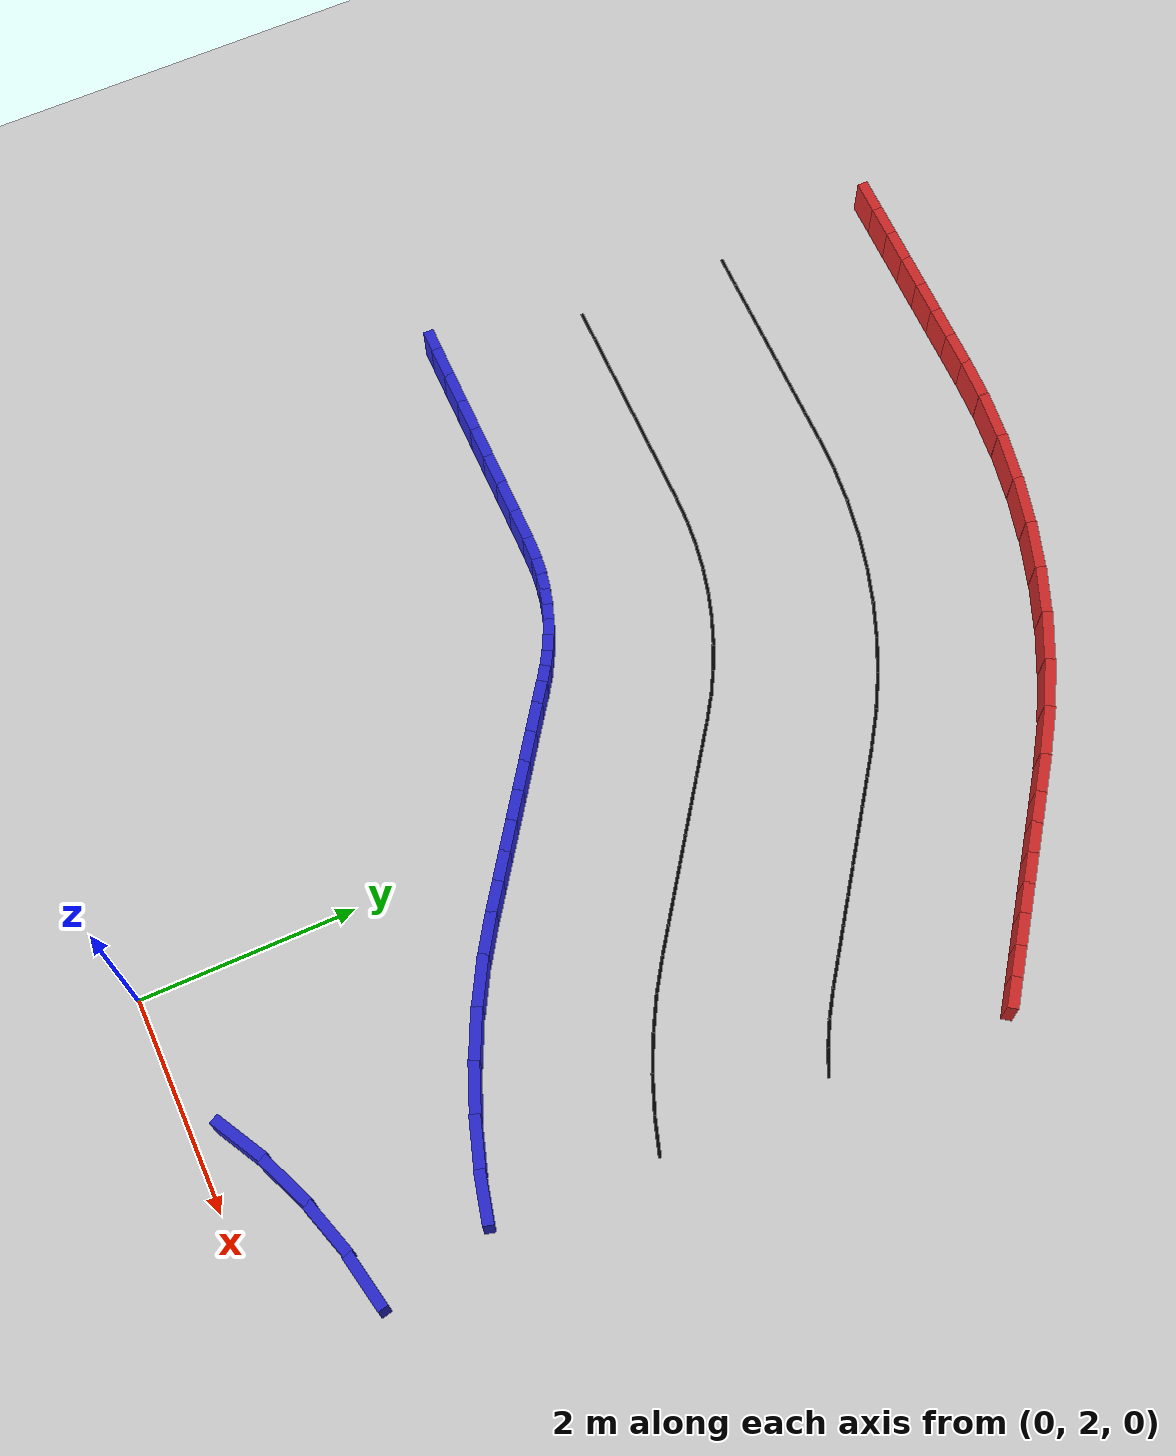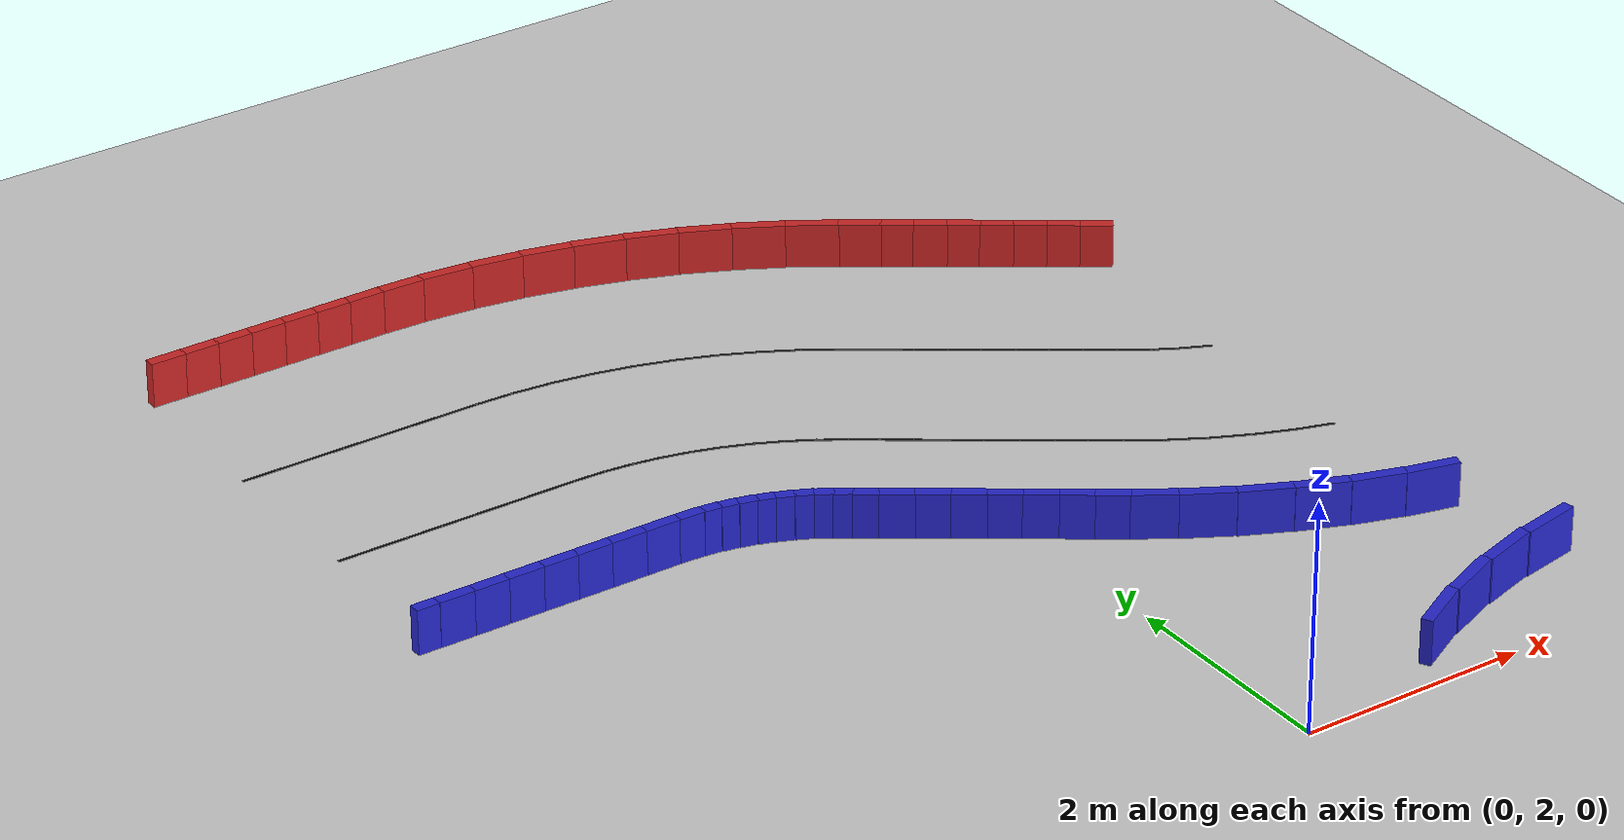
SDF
<sdf version="1.6">
 <world name="3lane_track">
  <include><uri>model://ground_plane</uri></include>
  <include><uri>model://sun</uri></include>
  <model name="iw_84">
   <static>true</static>
   <pose>1.5563 2.3871 0.200 0 0 0.5067</pose>
   <link name="l">
    <collision name="c"><geometry><box><size>0.5416 0.1 0.4</size></box></geometry></collision>
    <visual name="v">
     <geometry><box><size>0.5416 0.1 0.4</size></box></geometry>
     <material><ambient>0.15 0.15 0.8 1</ambient><diffuse>0.15 0.15 0.8 1</diffuse></material>
    </visual>
   </link>
  </model>
  <model name="iw_85">
   <static>true</static>
   <pose>2.0380 2.6106 0.200 0 0 0.4054</pose>
   <link name="l">
    <collision name="c"><geometry><box><size>0.5416 0.1 0.4</size></box></geometry></collision>
    <visual name="v">
     <geometry><box><size>0.5416 0.1 0.4</size></box></geometry>
     <material><ambient>0.15 0.15 0.8 1</ambient><diffuse>0.15 0.15 0.8 1</diffuse></material>
    </visual>
   </link>
  </model>
  <model name="iw_86">
   <static>true</static>
   <pose>2.5398 2.7841 0.200 0 0 0.3040</pose>
   <link name="l">
    <collision name="c"><geometry><box><size>0.5416 0.1 0.4</size></box></geometry></collision>
    <visual name="v">
     <geometry><box><size>0.5416 0.1 0.4</size></box></geometry>
     <material><ambient>0.15 0.15 0.8 1</ambient><diffuse>0.15 0.15 0.8 1</diffuse></material>
    </visual>
   </link>
  </model>
  <model name="iw_87">
   <static>true</static>
   <pose>3.0566 2.9060 0.200 0 0 0.2027</pose>
   <link name="l">
    <collision name="c"><geometry><box><size>0.5416 0.1 0.4</size></box></geometry></collision>
    <visual name="v">
     <geometry><box><size>0.5416 0.1 0.4</size></box></geometry>
     <material><ambient>0.15 0.15 0.8 1</ambient><diffuse>0.15 0.15 0.8 1</diffuse></material>
    </visual>
   </link>
  </model>
  <model name="iw_249">
   <static>true</static>
   <pose>2.8333 4.0444 0.200 0 0 2.9040</pose>
   <link name="l">
    <collision name="c"><geometry><box><size>0.4680 0.1 0.4</size></box></geometry></collision>
    <visual name="v">
     <geometry><box><size>0.4680 0.1 0.4</size></box></geometry>
     <material><ambient>0.15 0.15 0.8 1</ambient><diffuse>0.15 0.15 0.8 1</diffuse></material>
    </visual>
   </link>
  </model>
  <model name="iw_250">
   <static>true</static>
   <pose>2.3937 4.1721 0.200 0 0 2.8362</pose>
   <link name="l">
    <collision name="c"><geometry><box><size>0.4680 0.1 0.4</size></box></geometry></collision>
    <visual name="v">
     <geometry><box><size>0.4680 0.1 0.4</size></box></geometry>
     <material><ambient>0.15 0.15 0.8 1</ambient><diffuse>0.15 0.15 0.8 1</diffuse></material>
    </visual>
   </link>
  </model>
  <model name="iw_251">
   <static>true</static>
   <pose>1.9639 4.3294 0.200 0 0 2.7683</pose>
   <link name="l">
    <collision name="c"><geometry><box><size>0.4680 0.1 0.4</size></box></geometry></collision>
    <visual name="v">
     <geometry><box><size>0.4680 0.1 0.4</size></box></geometry>
     <material><ambient>0.15 0.15 0.8 1</ambient><diffuse>0.15 0.15 0.8 1</diffuse></material>
    </visual>
   </link>
  </model>
  <model name="iw_252">
   <static>true</static>
   <pose>1.5456 4.5154 0.200 0 0 2.7004</pose>
   <link name="l">
    <collision name="c"><geometry><box><size>0.4680 0.1 0.4</size></box></geometry></collision>
    <visual name="v">
     <geometry><box><size>0.4680 0.1 0.4</size></box></geometry>
     <material><ambient>0.15 0.15 0.8 1</ambient><diffuse>0.15 0.15 0.8 1</diffuse></material>
    </visual>
   </link>
  </model>
  <model name="iw_253">
   <static>true</static>
   <pose>1.1410 4.7294 0.200 0 0 2.6325</pose>
   <link name="l">
    <collision name="c"><geometry><box><size>0.4680 0.1 0.4</size></box></geometry></collision>
    <visual name="v">
     <geometry><box><size>0.4680 0.1 0.4</size></box></geometry>
     <material><ambient>0.15 0.15 0.8 1</ambient><diffuse>0.15 0.15 0.8 1</diffuse></material>
    </visual>
   </link>
  </model>
  <model name="iw_254">
   <static>true</static>
   <pose>0.7827 4.9479 0.200 0 0 2.5647</pose>
   <link name="l">
    <collision name="c"><geometry><box><size>0.3917 0.1 0.4</size></box></geometry></collision>
    <visual name="v">
     <geometry><box><size>0.3917 0.1 0.4</size></box></geometry>
     <material><ambient>0.15 0.15 0.8 1</ambient><diffuse>0.15 0.15 0.8 1</diffuse></material>
    </visual>
   </link>
  </model>
  <model name="iw_255">
   <static>true</static>
   <pose>0.5079 5.1332 0.200 0 0 2.5307</pose>
   <link name="l">
    <collision name="c"><geometry><box><size>0.2912 0.1 0.4</size></box></geometry></collision>
    <visual name="v">
     <geometry><box><size>0.2912 0.1 0.4</size></box></geometry>
     <material><ambient>0.15 0.15 0.8 1</ambient><diffuse>0.15 0.15 0.8 1</diffuse></material>
    </visual>
   </link>
  </model>
  <model name="iw_256">
   <static>true</static>
   <pose>0.2775 5.2945 0.200 0 0 2.5307</pose>
   <link name="l">
    <collision name="c"><geometry><box><size>0.2912 0.1 0.4</size></box></geometry></collision>
    <visual name="v">
     <geometry><box><size>0.2912 0.1 0.4</size></box></geometry>
     <material><ambient>0.15 0.15 0.8 1</ambient><diffuse>0.15 0.15 0.8 1</diffuse></material>
    </visual>
   </link>
  </model>
  <model name="iw_257">
   <static>true</static>
   <pose>0.0471 5.4558 0.200 0 0 2.5307</pose>
   <link name="l">
    <collision name="c"><geometry><box><size>0.2912 0.1 0.4</size></box></geometry></collision>
    <visual name="v">
     <geometry><box><size>0.2912 0.1 0.4</size></box></geometry>
     <material><ambient>0.15 0.15 0.8 1</ambient><diffuse>0.15 0.15 0.8 1</diffuse></material>
    </visual>
   </link>
  </model>
  <model name="iw_258">
   <static>true</static>
   <pose>-0.1833 5.6172 0.200 0 0 2.5307</pose>
   <link name="l">
    <collision name="c"><geometry><box><size>0.2912 0.1 0.4</size></box></geometry></collision>
    <visual name="v">
     <geometry><box><size>0.2912 0.1 0.4</size></box></geometry>
     <material><ambient>0.15 0.15 0.8 1</ambient><diffuse>0.15 0.15 0.8 1</diffuse></material>
    </visual>
   </link>
  </model>
  <model name="iw_259">
   <static>true</static>
   <pose>-0.4137 5.7785 0.200 0 0 2.5307</pose>
   <link name="l">
    <collision name="c"><geometry><box><size>0.2912 0.1 0.4</size></box></geometry></collision>
    <visual name="v">
     <geometry><box><size>0.2912 0.1 0.4</size></box></geometry>
     <material><ambient>0.15 0.15 0.8 1</ambient><diffuse>0.15 0.15 0.8 1</diffuse></material>
    </visual>
   </link>
  </model>
  <model name="iw_260">
   <static>true</static>
   <pose>-0.6440 5.9398 0.200 0 0 2.5307</pose>
   <link name="l">
    <collision name="c"><geometry><box><size>0.2913 0.1 0.4</size></box></geometry></collision>
    <visual name="v">
     <geometry><box><size>0.2913 0.1 0.4</size></box></geometry>
     <material><ambient>0.15 0.15 0.8 1</ambient><diffuse>0.15 0.15 0.8 1</diffuse></material>
    </visual>
   </link>
  </model>
  <model name="iw_261">
   <static>true</static>
   <pose>-0.8744 6.1011 0.200 0 0 2.5307</pose>
   <link name="l">
    <collision name="c"><geometry><box><size>0.2913 0.1 0.4</size></box></geometry></collision>
    <visual name="v">
     <geometry><box><size>0.2913 0.1 0.4</size></box></geometry>
     <material><ambient>0.15 0.15 0.8 1</ambient><diffuse>0.15 0.15 0.8 1</diffuse></material>
    </visual>
   </link>
  </model>
  <model name="iw_262">
   <static>true</static>
   <pose>-1.0732 6.2411 0.200 0 0 2.5307</pose>
   <link name="l">
    <collision name="c"><geometry><box><size>0.2149 0.1 0.4</size></box></geometry></collision>
    <visual name="v">
     <geometry><box><size>0.2149 0.1 0.4</size></box></geometry>
     <material><ambient>0.15 0.15 0.8 1</ambient><diffuse>0.15 0.15 0.8 1</diffuse></material>
    </visual>
   </link>
  </model>
  <model name="iw_263">
   <static>true</static>
   <pose>-1.2193 6.3442 0.200 0 0 2.5647</pose>
   <link name="l">
    <collision name="c"><geometry><box><size>0.1629 0.1 0.4</size></box></geometry></collision>
    <visual name="v">
     <geometry><box><size>0.1629 0.1 0.4</size></box></geometry>
     <material><ambient>0.15 0.15 0.8 1</ambient><diffuse>0.15 0.15 0.8 1</diffuse></material>
    </visual>
   </link>
  </model>
  <model name="iw_264">
   <static>true</static>
   <pose>-1.3474 6.4275 0.200 0 0 2.6325</pose>
   <link name="l">
    <collision name="c"><geometry><box><size>0.1629 0.1 0.4</size></box></geometry></collision>
    <visual name="v">
     <geometry><box><size>0.1629 0.1 0.4</size></box></geometry>
     <material><ambient>0.15 0.15 0.8 1</ambient><diffuse>0.15 0.15 0.8 1</diffuse></material>
    </visual>
   </link>
  </model>
  <model name="iw_265">
   <static>true</static>
   <pose>-1.4808 6.5020 0.200 0 0 2.7004</pose>
   <link name="l">
    <collision name="c"><geometry><box><size>0.1629 0.1 0.4</size></box></geometry></collision>
    <visual name="v">
     <geometry><box><size>0.1629 0.1 0.4</size></box></geometry>
     <material><ambient>0.15 0.15 0.8 1</ambient><diffuse>0.15 0.15 0.8 1</diffuse></material>
    </visual>
   </link>
  </model>
  <model name="iw_266">
   <static>true</static>
   <pose>-1.6189 6.5672 0.200 0 0 2.7683</pose>
   <link name="l">
    <collision name="c"><geometry><box><size>0.1629 0.1 0.4</size></box></geometry></collision>
    <visual name="v">
     <geometry><box><size>0.1629 0.1 0.4</size></box></geometry>
     <material><ambient>0.15 0.15 0.8 1</ambient><diffuse>0.15 0.15 0.8 1</diffuse></material>
    </visual>
   </link>
  </model>
  <model name="iw_267">
   <static>true</static>
   <pose>-1.7612 6.6229 0.200 0 0 2.8362</pose>
   <link name="l">
    <collision name="c"><geometry><box><size>0.1629 0.1 0.4</size></box></geometry></collision>
    <visual name="v">
     <geometry><box><size>0.1629 0.1 0.4</size></box></geometry>
     <material><ambient>0.15 0.15 0.8 1</ambient><diffuse>0.15 0.15 0.8 1</diffuse></material>
    </visual>
   </link>
  </model>
  <model name="iw_268">
   <static>true</static>
   <pose>-1.9069 6.6689 0.200 0 0 2.9040</pose>
   <link name="l">
    <collision name="c"><geometry><box><size>0.1629 0.1 0.4</size></box></geometry></collision>
    <visual name="v">
     <geometry><box><size>0.1629 0.1 0.4</size></box></geometry>
     <material><ambient>0.15 0.15 0.8 1</ambient><diffuse>0.15 0.15 0.8 1</diffuse></material>
    </visual>
   </link>
  </model>
  <model name="iw_269">
   <static>true</static>
   <pose>-2.0554 6.7048 0.200 0 0 2.9719</pose>
   <link name="l">
    <collision name="c"><geometry><box><size>0.1629 0.1 0.4</size></box></geometry></collision>
    <visual name="v">
     <geometry><box><size>0.1629 0.1 0.4</size></box></geometry>
     <material><ambient>0.15 0.15 0.8 1</ambient><diffuse>0.15 0.15 0.8 1</diffuse></material>
    </visual>
   </link>
  </model>
  <model name="iw_270">
   <static>true</static>
   <pose>-2.2060 6.7306 0.200 0 0 3.0398</pose>
   <link name="l">
    <collision name="c"><geometry><box><size>0.1629 0.1 0.4</size></box></geometry></collision>
    <visual name="v">
     <geometry><box><size>0.1629 0.1 0.4</size></box></geometry>
     <material><ambient>0.15 0.15 0.8 1</ambient><diffuse>0.15 0.15 0.8 1</diffuse></material>
    </visual>
   </link>
  </model>
  <model name="iw_271">
   <static>true</static>
   <pose>-2.3961 6.7455 0.200 0 0 3.1077</pose>
   <link name="l">
    <collision name="c"><geometry><box><size>0.2390 0.1 0.4</size></box></geometry></collision>
    <visual name="v">
     <geometry><box><size>0.2390 0.1 0.4</size></box></geometry>
     <material><ambient>0.15 0.15 0.8 1</ambient><diffuse>0.15 0.15 0.8 1</diffuse></material>
    </visual>
   </link>
  </model>
  <model name="iw_272">
   <static>true</static>
   <pose>-2.6662 6.7500 0.200 0 0 3.1416</pose>
   <link name="l">
    <collision name="c"><geometry><box><size>0.3212 0.1 0.4</size></box></geometry></collision>
    <visual name="v">
     <geometry><box><size>0.3212 0.1 0.4</size></box></geometry>
     <material><ambient>0.15 0.15 0.8 1</ambient><diffuse>0.15 0.15 0.8 1</diffuse></material>
    </visual>
   </link>
  </model>
  <model name="iw_273">
   <static>true</static>
   <pose>-2.9773 6.7500 0.200 0 0 3.1416</pose>
   <link name="l">
    <collision name="c"><geometry><box><size>0.3212 0.1 0.4</size></box></geometry></collision>
    <visual name="v">
     <geometry><box><size>0.3212 0.1 0.4</size></box></geometry>
     <material><ambient>0.15 0.15 0.8 1</ambient><diffuse>0.15 0.15 0.8 1</diffuse></material>
    </visual>
   </link>
  </model>
  <model name="iw_274">
   <static>true</static>
   <pose>-3.2885 6.7500 0.200 0 0 3.1416</pose>
   <link name="l">
    <collision name="c"><geometry><box><size>0.3212 0.1 0.4</size></box></geometry></collision>
    <visual name="v">
     <geometry><box><size>0.3212 0.1 0.4</size></box></geometry>
     <material><ambient>0.15 0.15 0.8 1</ambient><diffuse>0.15 0.15 0.8 1</diffuse></material>
    </visual>
   </link>
  </model>
  <model name="iw_275">
   <static>true</static>
   <pose>-3.5997 6.7500 0.200 0 0 3.1416</pose>
   <link name="l">
    <collision name="c"><geometry><box><size>0.3212 0.1 0.4</size></box></geometry></collision>
    <visual name="v">
     <geometry><box><size>0.3212 0.1 0.4</size></box></geometry>
     <material><ambient>0.15 0.15 0.8 1</ambient><diffuse>0.15 0.15 0.8 1</diffuse></material>
    </visual>
   </link>
  </model>
  <model name="iw_276">
   <static>true</static>
   <pose>-3.9109 6.7500 0.200 0 0 3.1416</pose>
   <link name="l">
    <collision name="c"><geometry><box><size>0.3212 0.1 0.4</size></box></geometry></collision>
    <visual name="v">
     <geometry><box><size>0.3212 0.1 0.4</size></box></geometry>
     <material><ambient>0.15 0.15 0.8 1</ambient><diffuse>0.15 0.15 0.8 1</diffuse></material>
    </visual>
   </link>
  </model>
  <model name="iw_277">
   <static>true</static>
   <pose>-4.2221 6.7500 0.200 0 0 3.1416</pose>
   <link name="l">
    <collision name="c"><geometry><box><size>0.3212 0.1 0.4</size></box></geometry></collision>
    <visual name="v">
     <geometry><box><size>0.3212 0.1 0.4</size></box></geometry>
     <material><ambient>0.15 0.15 0.8 1</ambient><diffuse>0.15 0.15 0.8 1</diffuse></material>
    </visual>
   </link>
  </model>
  <model name="iw_278">
   <static>true</static>
   <pose>-4.5332 6.7500 0.200 0 0 3.1416</pose>
   <link name="l">
    <collision name="c"><geometry><box><size>0.3212 0.1 0.4</size></box></geometry></collision>
    <visual name="v">
     <geometry><box><size>0.3212 0.1 0.4</size></box></geometry>
     <material><ambient>0.15 0.15 0.8 1</ambient><diffuse>0.15 0.15 0.8 1</diffuse></material>
    </visual>
   </link>
  </model>
  <model name="iw_279">
   <static>true</static>
   <pose>-4.7892 6.7514 0.200 0 0 3.1416</pose>
   <link name="l">
    <collision name="c"><geometry><box><size>0.2108 0.1 0.4</size></box></geometry></collision>
    <visual name="v">
     <geometry><box><size>0.2108 0.1 0.4</size></box></geometry>
     <material><ambient>0.15 0.15 0.8 1</ambient><diffuse>0.15 0.15 0.8 1</diffuse></material>
    </visual>
   </link>
  </model>
  <model name="ow_255">
   <static>true</static>
   <pose>3.0890 8.8194 0.200 0 0 2.5307</pose>
   <link name="l">
    <collision name="c"><geometry><box><size>0.2913 0.1 0.4</size></box></geometry></collision>
    <visual name="v">
     <geometry><box><size>0.2913 0.1 0.4</size></box></geometry>
     <material><ambient>0.8 0.15 0.15 1</ambient><diffuse>0.8 0.15 0.15 1</diffuse></material>
    </visual>
   </link>
  </model>
  <model name="ow_256">
   <static>true</static>
   <pose>2.8586 8.9807 0.200 0 0 2.5307</pose>
   <link name="l">
    <collision name="c"><geometry><box><size>0.2912 0.1 0.4</size></box></geometry></collision>
    <visual name="v">
     <geometry><box><size>0.2912 0.1 0.4</size></box></geometry>
     <material><ambient>0.8 0.15 0.15 1</ambient><diffuse>0.8 0.15 0.15 1</diffuse></material>
    </visual>
   </link>
  </model>
  <model name="ow_257">
   <static>true</static>
   <pose>2.6282 9.1420 0.200 0 0 2.5307</pose>
   <link name="l">
    <collision name="c"><geometry><box><size>0.2913 0.1 0.4</size></box></geometry></collision>
    <visual name="v">
     <geometry><box><size>0.2913 0.1 0.4</size></box></geometry>
     <material><ambient>0.8 0.15 0.15 1</ambient><diffuse>0.8 0.15 0.15 1</diffuse></material>
    </visual>
   </link>
  </model>
  <model name="ow_258">
   <static>true</static>
   <pose>2.3978 9.3033 0.200 0 0 2.5307</pose>
   <link name="l">
    <collision name="c"><geometry><box><size>0.2912 0.1 0.4</size></box></geometry></collision>
    <visual name="v">
     <geometry><box><size>0.2912 0.1 0.4</size></box></geometry>
     <material><ambient>0.8 0.15 0.15 1</ambient><diffuse>0.8 0.15 0.15 1</diffuse></material>
    </visual>
   </link>
  </model>
  <model name="ow_259">
   <static>true</static>
   <pose>2.1674 9.4647 0.200 0 0 2.5307</pose>
   <link name="l">
    <collision name="c"><geometry><box><size>0.2913 0.1 0.4</size></box></geometry></collision>
    <visual name="v">
     <geometry><box><size>0.2913 0.1 0.4</size></box></geometry>
     <material><ambient>0.8 0.15 0.15 1</ambient><diffuse>0.8 0.15 0.15 1</diffuse></material>
    </visual>
   </link>
  </model>
  <model name="ow_260">
   <static>true</static>
   <pose>1.9370 9.6260 0.200 0 0 2.5307</pose>
   <link name="l">
    <collision name="c"><geometry><box><size>0.2912 0.1 0.4</size></box></geometry></collision>
    <visual name="v">
     <geometry><box><size>0.2912 0.1 0.4</size></box></geometry>
     <material><ambient>0.8 0.15 0.15 1</ambient><diffuse>0.8 0.15 0.15 1</diffuse></material>
    </visual>
   </link>
  </model>
  <model name="ow_261">
   <static>true</static>
   <pose>1.7067 9.7873 0.200 0 0 2.5307</pose>
   <link name="l">
    <collision name="c"><geometry><box><size>0.2913 0.1 0.4</size></box></geometry></collision>
    <visual name="v">
     <geometry><box><size>0.2913 0.1 0.4</size></box></geometry>
     <material><ambient>0.8 0.15 0.15 1</ambient><diffuse>0.8 0.15 0.15 1</diffuse></material>
    </visual>
   </link>
  </model>
  <model name="ow_262">
   <static>true</static>
   <pose>1.4446 9.9700 0.200 0 0 2.5307</pose>
   <link name="l">
    <collision name="c"><geometry><box><size>0.3676 0.1 0.4</size></box></geometry></collision>
    <visual name="v">
     <geometry><box><size>0.3676 0.1 0.4</size></box></geometry>
     <material><ambient>0.8 0.15 0.15 1</ambient><diffuse>0.8 0.15 0.15 1</diffuse></material>
    </visual>
   </link>
  </model>
  <model name="ow_263">
   <static>true</static>
   <pose>1.1045 10.1947 0.200 0 0 2.5647</pose>
   <link name="l">
    <collision name="c"><geometry><box><size>0.4680 0.1 0.4</size></box></geometry></collision>
    <visual name="v">
     <geometry><box><size>0.4680 0.1 0.4</size></box></geometry>
     <material><ambient>0.8 0.15 0.15 1</ambient><diffuse>0.8 0.15 0.15 1</diffuse></material>
    </visual>
   </link>
  </model>
  <model name="ow_264">
   <static>true</static>
   <pose>0.7099 10.4268 0.200 0 0 2.6325</pose>
   <link name="l">
    <collision name="c"><geometry><box><size>0.4680 0.1 0.4</size></box></geometry></collision>
    <visual name="v">
     <geometry><box><size>0.4680 0.1 0.4</size></box></geometry>
     <material><ambient>0.8 0.15 0.15 1</ambient><diffuse>0.8 0.15 0.15 1</diffuse></material>
    </visual>
   </link>
  </model>
  <model name="ow_265">
   <static>true</static>
   <pose>0.3005 10.6316 0.200 0 0 2.7004</pose>
   <link name="l">
    <collision name="c"><geometry><box><size>0.4680 0.1 0.4</size></box></geometry></collision>
    <visual name="v">
     <geometry><box><size>0.4680 0.1 0.4</size></box></geometry>
     <material><ambient>0.8 0.15 0.15 1</ambient><diffuse>0.8 0.15 0.15 1</diffuse></material>
    </visual>
   </link>
  </model>
  <model name="ow_266">
   <static>true</static>
   <pose>-0.1218 10.8081 0.200 0 0 2.7683</pose>
   <link name="l">
    <collision name="c"><geometry><box><size>0.4680 0.1 0.4</size></box></geometry></collision>
    <visual name="v">
     <geometry><box><size>0.4680 0.1 0.4</size></box></geometry>
     <material><ambient>0.8 0.15 0.15 1</ambient><diffuse>0.8 0.15 0.15 1</diffuse></material>
    </visual>
   </link>
  </model>
  <model name="ow_267">
   <static>true</static>
   <pose>-0.5551 10.9556 0.200 0 0 2.8362</pose>
   <link name="l">
    <collision name="c"><geometry><box><size>0.4680 0.1 0.4</size></box></geometry></collision>
    <visual name="v">
     <geometry><box><size>0.4680 0.1 0.4</size></box></geometry>
     <material><ambient>0.8 0.15 0.15 1</ambient><diffuse>0.8 0.15 0.15 1</diffuse></material>
    </visual>
   </link>
  </model>
  <model name="ow_268">
   <static>true</static>
   <pose>-0.9975 11.0733 0.200 0 0 2.9040</pose>
   <link name="l">
    <collision name="c"><geometry><box><size>0.4680 0.1 0.4</size></box></geometry></collision>
    <visual name="v">
     <geometry><box><size>0.4680 0.1 0.4</size></box></geometry>
     <material><ambient>0.8 0.15 0.15 1</ambient><diffuse>0.8 0.15 0.15 1</diffuse></material>
    </visual>
   </link>
  </model>
  <model name="ow_269">
   <static>true</static>
   <pose>-1.4468 11.1608 0.200 0 0 2.9719</pose>
   <link name="l">
    <collision name="c"><geometry><box><size>0.4680 0.1 0.4</size></box></geometry></collision>
    <visual name="v">
     <geometry><box><size>0.4680 0.1 0.4</size></box></geometry>
     <material><ambient>0.8 0.15 0.15 1</ambient><diffuse>0.8 0.15 0.15 1</diffuse></material>
    </visual>
   </link>
  </model>
  <model name="ow_270">
   <static>true</static>
   <pose>-1.9010 11.2176 0.200 0 0 3.0398</pose>
   <link name="l">
    <collision name="c"><geometry><box><size>0.4680 0.1 0.4</size></box></geometry></collision>
    <visual name="v">
     <geometry><box><size>0.4680 0.1 0.4</size></box></geometry>
     <material><ambient>0.8 0.15 0.15 1</ambient><diffuse>0.8 0.15 0.15 1</diffuse></material>
    </visual>
   </link>
  </model>
  <model name="ow_271">
   <static>true</static>
   <pose>-2.3198 11.2442 0.200 0 0 3.1077</pose>
   <link name="l">
    <collision name="c"><geometry><box><size>0.3917 0.1 0.4</size></box></geometry></collision>
    <visual name="v">
     <geometry><box><size>0.3917 0.1 0.4</size></box></geometry>
     <material><ambient>0.8 0.15 0.15 1</ambient><diffuse>0.8 0.15 0.15 1</diffuse></material>
    </visual>
   </link>
  </model>
  <model name="ow_272">
   <static>true</static>
   <pose>-2.6662 11.2500 0.200 0 0 3.1416</pose>
   <link name="l">
    <collision name="c"><geometry><box><size>0.3212 0.1 0.4</size></box></geometry></collision>
    <visual name="v">
     <geometry><box><size>0.3212 0.1 0.4</size></box></geometry>
     <material><ambient>0.8 0.15 0.15 1</ambient><diffuse>0.8 0.15 0.15 1</diffuse></material>
    </visual>
   </link>
  </model>
  <model name="ow_273">
   <static>true</static>
   <pose>-2.9773 11.2500 0.200 0 0 3.1416</pose>
   <link name="l">
    <collision name="c"><geometry><box><size>0.3212 0.1 0.4</size></box></geometry></collision>
    <visual name="v">
     <geometry><box><size>0.3212 0.1 0.4</size></box></geometry>
     <material><ambient>0.8 0.15 0.15 1</ambient><diffuse>0.8 0.15 0.15 1</diffuse></material>
    </visual>
   </link>
  </model>
  <model name="ow_274">
   <static>true</static>
   <pose>-3.2885 11.2500 0.200 0 0 3.1416</pose>
   <link name="l">
    <collision name="c"><geometry><box><size>0.3212 0.1 0.4</size></box></geometry></collision>
    <visual name="v">
     <geometry><box><size>0.3212 0.1 0.4</size></box></geometry>
     <material><ambient>0.8 0.15 0.15 1</ambient><diffuse>0.8 0.15 0.15 1</diffuse></material>
    </visual>
   </link>
  </model>
  <model name="ow_275">
   <static>true</static>
   <pose>-3.5997 11.2500 0.200 0 0 3.1416</pose>
   <link name="l">
    <collision name="c"><geometry><box><size>0.3212 0.1 0.4</size></box></geometry></collision>
    <visual name="v">
     <geometry><box><size>0.3212 0.1 0.4</size></box></geometry>
     <material><ambient>0.8 0.15 0.15 1</ambient><diffuse>0.8 0.15 0.15 1</diffuse></material>
    </visual>
   </link>
  </model>
  <model name="ow_276">
   <static>true</static>
   <pose>-3.9109 11.2500 0.200 0 0 3.1416</pose>
   <link name="l">
    <collision name="c"><geometry><box><size>0.3212 0.1 0.4</size></box></geometry></collision>
    <visual name="v">
     <geometry><box><size>0.3212 0.1 0.4</size></box></geometry>
     <material><ambient>0.8 0.15 0.15 1</ambient><diffuse>0.8 0.15 0.15 1</diffuse></material>
    </visual>
   </link>
  </model>
  <model name="ow_277">
   <static>true</static>
   <pose>-4.2221 11.2500 0.200 0 0 3.1416</pose>
   <link name="l">
    <collision name="c"><geometry><box><size>0.3212 0.1 0.4</size></box></geometry></collision>
    <visual name="v">
     <geometry><box><size>0.3212 0.1 0.4</size></box></geometry>
     <material><ambient>0.8 0.15 0.15 1</ambient><diffuse>0.8 0.15 0.15 1</diffuse></material>
    </visual>
   </link>
  </model>
  <model name="ow_278">
   <static>true</static>
   <pose>-4.5332 11.2500 0.200 0 0 3.1416</pose>
   <link name="l">
    <collision name="c"><geometry><box><size>0.3212 0.1 0.4</size></box></geometry></collision>
    <visual name="v">
     <geometry><box><size>0.3212 0.1 0.4</size></box></geometry>
     <material><ambient>0.8 0.15 0.15 1</ambient><diffuse>0.8 0.15 0.15 1</diffuse></material>
    </visual>
   </link>
  </model>
  <model name="line_500">
   <static>true</static>
   <pose>2.8928 5.5858 0.002 0 0 2.8362</pose>
   <link name="l">
    <visual name="v">
     <geometry><box><size>0.3662 0.03 0.002</size></box></geometry>
     <material><ambient>0 0 0 1</ambient><diffuse>0 0 0 1</diffuse></material>
    </visual>
   </link>
  </model>
  <model name="line_502">
   <static>true</static>
   <pose>2.5576 5.7059 0.002 0 0 2.7683</pose>
   <link name="l">
    <visual name="v">
     <geometry><box><size>0.3662 0.03 0.002</size></box></geometry>
     <material><ambient>0 0 0 1</ambient><diffuse>0 0 0 1</diffuse></material>
    </visual>
   </link>
  </model>
  <model name="line_504">
   <static>true</static>
   <pose>2.2314 5.8485 0.002 0 0 2.7004</pose>
   <link name="l">
    <visual name="v">
     <geometry><box><size>0.3662 0.03 0.002</size></box></geometry>
     <material><ambient>0 0 0 1</ambient><diffuse>0 0 0 1</diffuse></material>
    </visual>
   </link>
  </model>
  <model name="line_505">
   <static>true</static>
   <pose>2.9172 7.1816 0.002 0 0 2.7004</pose>
   <link name="l">
    <visual name="v">
     <geometry><box><size>0.2645 0.03 0.002</size></box></geometry>
     <material><ambient>0 0 0 1</ambient><diffuse>0 0 0 1</diffuse></material>
    </visual>
   </link>
  </model>
  <model name="line_506">
   <static>true</static>
   <pose>1.9156 6.0129 0.002 0 0 2.6325</pose>
   <link name="l">
    <visual name="v">
     <geometry><box><size>0.3662 0.03 0.002</size></box></geometry>
     <material><ambient>0 0 0 1</ambient><diffuse>0 0 0 1</diffuse></material>
    </visual>
   </link>
  </model>
  <model name="line_507">
   <static>true</static>
   <pose>2.6902 7.2964 0.002 0 0 2.6325</pose>
   <link name="l">
    <visual name="v">
     <geometry><box><size>0.2645 0.03 0.002</size></box></geometry>
     <material><ambient>0 0 0 1</ambient><diffuse>0 0 0 1</diffuse></material>
    </visual>
   </link>
  </model>
  <model name="line_508">
   <static>true</static>
   <pose>1.6220 6.1909 0.002 0 0 2.5647</pose>
   <link name="l">
    <visual name="v">
     <geometry><box><size>0.3408 0.03 0.002</size></box></geometry>
     <material><ambient>0 0 0 1</ambient><diffuse>0 0 0 1</diffuse></material>
    </visual>
   </link>
  </model>
  <model name="line_509">
   <static>true</static>
   <pose>2.4612 7.4338 0.002 0 0 2.5647</pose>
   <link name="l">
    <visual name="v">
     <geometry><box><size>0.2899 0.03 0.002</size></box></geometry>
     <material><ambient>0 0 0 1</ambient><diffuse>0 0 0 1</diffuse></material>
    </visual>
   </link>
  </model>
  <model name="line_510">
   <static>true</static>
   <pose>1.3683 6.3619 0.002 0 0 2.5307</pose>
   <link name="l">
    <visual name="v">
     <geometry><box><size>0.2912 0.03 0.002</size></box></geometry>
     <material><ambient>0 0 0 1</ambient><diffuse>0 0 0 1</diffuse></material>
    </visual>
   </link>
  </model>
  <model name="line_511">
   <static>true</static>
   <pose>2.2286 7.5907 0.002 0 0 2.5307</pose>
   <link name="l">
    <visual name="v">
     <geometry><box><size>0.2912 0.03 0.002</size></box></geometry>
     <material><ambient>0 0 0 1</ambient><diffuse>0 0 0 1</diffuse></material>
    </visual>
   </link>
  </model>
  <model name="line_512">
   <static>true</static>
   <pose>1.1379 6.5233 0.002 0 0 2.5307</pose>
   <link name="l">
    <visual name="v">
     <geometry><box><size>0.2912 0.03 0.002</size></box></geometry>
     <material><ambient>0 0 0 1</ambient><diffuse>0 0 0 1</diffuse></material>
    </visual>
   </link>
  </model>
  <model name="line_513">
   <static>true</static>
   <pose>1.9982 7.7520 0.002 0 0 2.5307</pose>
   <link name="l">
    <visual name="v">
     <geometry><box><size>0.2912 0.03 0.002</size></box></geometry>
     <material><ambient>0 0 0 1</ambient><diffuse>0 0 0 1</diffuse></material>
    </visual>
   </link>
  </model>
  <model name="line_514">
   <static>true</static>
   <pose>0.9075 6.6846 0.002 0 0 2.5307</pose>
   <link name="l">
    <visual name="v">
     <geometry><box><size>0.2912 0.03 0.002</size></box></geometry>
     <material><ambient>0 0 0 1</ambient><diffuse>0 0 0 1</diffuse></material>
    </visual>
   </link>
  </model>
  <model name="line_515">
   <static>true</static>
   <pose>1.7678 7.9133 0.002 0 0 2.5307</pose>
   <link name="l">
    <visual name="v">
     <geometry><box><size>0.2912 0.03 0.002</size></box></geometry>
     <material><ambient>0 0 0 1</ambient><diffuse>0 0 0 1</diffuse></material>
    </visual>
   </link>
  </model>
  <model name="line_516">
   <static>true</static>
   <pose>0.6771 6.8459 0.002 0 0 2.5307</pose>
   <link name="l">
    <visual name="v">
     <geometry><box><size>0.2912 0.03 0.002</size></box></geometry>
     <material><ambient>0 0 0 1</ambient><diffuse>0 0 0 1</diffuse></material>
    </visual>
   </link>
  </model>
  <model name="line_517">
   <static>true</static>
   <pose>1.5375 8.0746 0.002 0 0 2.5307</pose>
   <link name="l">
    <visual name="v">
     <geometry><box><size>0.2912 0.03 0.002</size></box></geometry>
     <material><ambient>0 0 0 1</ambient><diffuse>0 0 0 1</diffuse></material>
    </visual>
   </link>
  </model>
  <model name="line_518">
   <static>true</static>
   <pose>0.4467 7.0072 0.002 0 0 2.5307</pose>
   <link name="l">
    <visual name="v">
     <geometry><box><size>0.2912 0.03 0.002</size></box></geometry>
     <material><ambient>0 0 0 1</ambient><diffuse>0 0 0 1</diffuse></material>
    </visual>
   </link>
  </model>
  <model name="line_519">
   <static>true</static>
   <pose>1.3071 8.2359 0.002 0 0 2.5307</pose>
   <link name="l">
    <visual name="v">
     <geometry><box><size>0.2913 0.03 0.002</size></box></geometry>
     <material><ambient>0 0 0 1</ambient><diffuse>0 0 0 1</diffuse></material>
    </visual>
   </link>
  </model>
  <model name="line_520">
   <static>true</static>
   <pose>0.2163 7.1685 0.002 0 0 2.5307</pose>
   <link name="l">
    <visual name="v">
     <geometry><box><size>0.2913 0.03 0.002</size></box></geometry>
     <material><ambient>0 0 0 1</ambient><diffuse>0 0 0 1</diffuse></material>
    </visual>
   </link>
  </model>
  <model name="line_521">
   <static>true</static>
   <pose>1.0767 8.3973 0.002 0 0 2.5307</pose>
   <link name="l">
    <visual name="v">
     <geometry><box><size>0.2912 0.03 0.002</size></box></geometry>
     <material><ambient>0 0 0 1</ambient><diffuse>0 0 0 1</diffuse></material>
    </visual>
   </link>
  </model>
  <model name="line_522">
   <static>true</static>
   <pose>-0.0141 7.3298 0.002 0 0 2.5307</pose>
   <link name="l">
    <visual name="v">
     <geometry><box><size>0.2913 0.03 0.002</size></box></geometry>
     <material><ambient>0 0 0 1</ambient><diffuse>0 0 0 1</diffuse></material>
    </visual>
   </link>
  </model>
  <model name="line_523">
   <static>true</static>
   <pose>0.8463 8.5586 0.002 0 0 2.5307</pose>
   <link name="l">
    <visual name="v">
     <geometry><box><size>0.2913 0.03 0.002</size></box></geometry>
     <material><ambient>0 0 0 1</ambient><diffuse>0 0 0 1</diffuse></material>
    </visual>
   </link>
  </model>
  <model name="line_524">
   <static>true</static>
   <pose>-0.2339 7.4840 0.002 0 0 2.5307</pose>
   <link name="l">
    <visual name="v">
     <geometry><box><size>0.2658 0.03 0.002</size></box></geometry>
     <material><ambient>0 0 0 1</ambient><diffuse>0 0 0 1</diffuse></material>
    </visual>
   </link>
  </model>
  <model name="line_525">
   <static>true</static>
   <pose>0.6054 8.7270 0.002 0 0 2.5307</pose>
   <link name="l">
    <visual name="v">
     <geometry><box><size>0.3167 0.03 0.002</size></box></geometry>
     <material><ambient>0 0 0 1</ambient><diffuse>0 0 0 1</diffuse></material>
    </visual>
   </link>
  </model>
  <model name="line_526">
   <static>true</static>
   <pose>-0.4447 7.6277 0.002 0 0 2.5647</pose>
   <link name="l">
    <visual name="v">
     <geometry><box><size>0.2645 0.03 0.002</size></box></geometry>
     <material><ambient>0 0 0 1</ambient><diffuse>0 0 0 1</diffuse></material>
    </visual>
   </link>
  </model>
  <model name="line_527">
   <static>true</static>
   <pose>0.3299 8.9112 0.002 0 0 2.5647</pose>
   <link name="l">
    <visual name="v">
     <geometry><box><size>0.3662 0.03 0.002</size></box></geometry>
     <material><ambient>0 0 0 1</ambient><diffuse>0 0 0 1</diffuse></material>
    </visual>
   </link>
  </model>
  <model name="line_528">
   <static>true</static>
   <pose>-0.6616 7.7606 0.002 0 0 2.6325</pose>
   <link name="l">
    <visual name="v">
     <geometry><box><size>0.2645 0.03 0.002</size></box></geometry>
     <material><ambient>0 0 0 1</ambient><diffuse>0 0 0 1</diffuse></material>
    </visual>
   </link>
  </model>
  <model name="line_529">
   <static>true</static>
   <pose>0.0241 9.0937 0.002 0 0 2.6325</pose>
   <link name="l">
    <visual name="v">
     <geometry><box><size>0.3662 0.03 0.002</size></box></geometry>
     <material><ambient>0 0 0 1</ambient><diffuse>0 0 0 1</diffuse></material>
    </visual>
   </link>
  </model>
  <model name="line_530">
   <static>true</static>
   <pose>-0.8870 7.8785 0.002 0 0 2.7004</pose>
   <link name="l">
    <visual name="v">
     <geometry><box><size>0.2645 0.03 0.002</size></box></geometry>
     <material><ambient>0 0 0 1</ambient><diffuse>0 0 0 1</diffuse></material>
    </visual>
   </link>
  </model>
  <model name="line_531">
   <static>true</static>
   <pose>-0.2932 9.2550 0.002 0 0 2.7004</pose>
   <link name="l">
    <visual name="v">
     <geometry><box><size>0.3662 0.03 0.002</size></box></geometry>
     <material><ambient>0 0 0 1</ambient><diffuse>0 0 0 1</diffuse></material>
    </visual>
   </link>
  </model>
  <model name="line_532">
   <static>true</static>
   <pose>-1.1199 7.9808 0.002 0 0 2.7683</pose>
   <link name="l">
    <visual name="v">
     <geometry><box><size>0.2645 0.03 0.002</size></box></geometry>
     <material><ambient>0 0 0 1</ambient><diffuse>0 0 0 1</diffuse></material>
    </visual>
   </link>
  </model>
  <model name="line_533">
   <static>true</static>
   <pose>-0.6208 9.3945 0.002 0 0 2.7683</pose>
   <link name="l">
    <visual name="v">
     <geometry><box><size>0.3662 0.03 0.002</size></box></geometry>
     <material><ambient>0 0 0 1</ambient><diffuse>0 0 0 1</diffuse></material>
    </visual>
   </link>
  </model>
  <model name="line_534">
   <static>true</static>
   <pose>-1.3592 8.0671 0.002 0 0 2.8362</pose>
   <link name="l">
    <visual name="v">
     <geometry><box><size>0.2645 0.03 0.002</size></box></geometry>
     <material><ambient>0 0 0 1</ambient><diffuse>0 0 0 1</diffuse></material>
    </visual>
   </link>
  </model>
  <model name="line_535">
   <static>true</static>
   <pose>-0.9571 9.5114 0.002 0 0 2.8362</pose>
   <link name="l">
    <visual name="v">
     <geometry><box><size>0.3662 0.03 0.002</size></box></geometry>
     <material><ambient>0 0 0 1</ambient><diffuse>0 0 0 1</diffuse></material>
    </visual>
   </link>
  </model>
  <model name="line_536">
   <static>true</static>
   <pose>-1.6038 8.1370 0.002 0 0 2.9040</pose>
   <link name="l">
    <visual name="v">
     <geometry><box><size>0.2645 0.03 0.002</size></box></geometry>
     <material><ambient>0 0 0 1</ambient><diffuse>0 0 0 1</diffuse></material>
    </visual>
   </link>
  </model>
  <model name="line_537">
   <static>true</static>
   <pose>-1.3006 9.6052 0.002 0 0 2.9040</pose>
   <link name="l">
    <visual name="v">
     <geometry><box><size>0.3662 0.03 0.002</size></box></geometry>
     <material><ambient>0 0 0 1</ambient><diffuse>0 0 0 1</diffuse></material>
    </visual>
   </link>
  </model>
  <model name="line_538">
   <static>true</static>
   <pose>-1.8525 8.1901 0.002 0 0 2.9719</pose>
   <link name="l">
    <visual name="v">
     <geometry><box><size>0.2645 0.03 0.002</size></box></geometry>
     <material><ambient>0 0 0 1</ambient><diffuse>0 0 0 1</diffuse></material>
    </visual>
   </link>
  </model>
  <model name="line_539">
   <static>true</static>
   <pose>-1.6496 9.6755 0.002 0 0 2.9719</pose>
   <link name="l">
    <visual name="v">
     <geometry><box><size>0.3662 0.03 0.002</size></box></geometry>
     <material><ambient>0 0 0 1</ambient><diffuse>0 0 0 1</diffuse></material>
    </visual>
   </link>
  </model>
  <model name="line_540">
   <static>true</static>
   <pose>-2.1043 8.2263 0.002 0 0 3.0398</pose>
   <link name="l">
    <visual name="v">
     <geometry><box><size>0.2645 0.03 0.002</size></box></geometry>
     <material><ambient>0 0 0 1</ambient><diffuse>0 0 0 1</diffuse></material>
    </visual>
   </link>
  </model>
  <model name="line_541">
   <static>true</static>
   <pose>-2.0026 9.7220 0.002 0 0 3.0398</pose>
   <link name="l">
    <visual name="v">
     <geometry><box><size>0.3662 0.03 0.002</size></box></geometry>
     <material><ambient>0 0 0 1</ambient><diffuse>0 0 0 1</diffuse></material>
    </visual>
   </link>
  </model>
  <model name="line_542">
   <static>true</static>
   <pose>-2.3707 8.2450 0.002 0 0 3.1077</pose>
   <link name="l">
    <visual name="v">
     <geometry><box><size>0.2899 0.03 0.002</size></box></geometry>
     <material><ambient>0 0 0 1</ambient><diffuse>0 0 0 1</diffuse></material>
    </visual>
   </link>
  </model>
  <model name="line_543">
   <static>true</static>
   <pose>-2.3452 9.7446 0.002 0 0 3.1077</pose>
   <link name="l">
    <visual name="v">
     <geometry><box><size>0.3408 0.03 0.002</size></box></geometry>
     <material><ambient>0 0 0 1</ambient><diffuse>0 0 0 1</diffuse></material>
    </visual>
   </link>
  </model>
  <model name="line_544">
   <static>true</static>
   <pose>-2.6662 8.2500 0.002 0 0 3.1416</pose>
   <link name="l">
    <visual name="v">
     <geometry><box><size>0.3212 0.03 0.002</size></box></geometry>
     <material><ambient>0 0 0 1</ambient><diffuse>0 0 0 1</diffuse></material>
    </visual>
   </link>
  </model>
  <model name="line_545">
   <static>true</static>
   <pose>-2.6662 9.7500 0.002 0 0 3.1416</pose>
   <link name="l">
    <visual name="v">
     <geometry><box><size>0.3212 0.03 0.002</size></box></geometry>
     <material><ambient>0 0 0 1</ambient><diffuse>0 0 0 1</diffuse></material>
    </visual>
   </link>
  </model>
  <model name="line_546">
   <static>true</static>
   <pose>-2.9773 8.2500 0.002 0 0 3.1416</pose>
   <link name="l">
    <visual name="v">
     <geometry><box><size>0.3212 0.03 0.002</size></box></geometry>
     <material><ambient>0 0 0 1</ambient><diffuse>0 0 0 1</diffuse></material>
    </visual>
   </link>
  </model>
  <model name="line_547">
   <static>true</static>
   <pose>-2.9773 9.7500 0.002 0 0 3.1416</pose>
   <link name="l">
    <visual name="v">
     <geometry><box><size>0.3212 0.03 0.002</size></box></geometry>
     <material><ambient>0 0 0 1</ambient><diffuse>0 0 0 1</diffuse></material>
    </visual>
   </link>
  </model>
  <model name="line_548">
   <static>true</static>
   <pose>-3.2885 8.2500 0.002 0 0 3.1416</pose>
   <link name="l">
    <visual name="v">
     <geometry><box><size>0.3212 0.03 0.002</size></box></geometry>
     <material><ambient>0 0 0 1</ambient><diffuse>0 0 0 1</diffuse></material>
    </visual>
   </link>
  </model>
  <model name="line_549">
   <static>true</static>
   <pose>-3.2885 9.7500 0.002 0 0 3.1416</pose>
   <link name="l">
    <visual name="v">
     <geometry><box><size>0.3212 0.03 0.002</size></box></geometry>
     <material><ambient>0 0 0 1</ambient><diffuse>0 0 0 1</diffuse></material>
    </visual>
   </link>
  </model>
  <model name="line_550">
   <static>true</static>
   <pose>-3.5997 8.2500 0.002 0 0 3.1416</pose>
   <link name="l">
    <visual name="v">
     <geometry><box><size>0.3212 0.03 0.002</size></box></geometry>
     <material><ambient>0 0 0 1</ambient><diffuse>0 0 0 1</diffuse></material>
    </visual>
   </link>
  </model>
  <model name="line_551">
   <static>true</static>
   <pose>-3.5997 9.7500 0.002 0 0 3.1416</pose>
   <link name="l">
    <visual name="v">
     <geometry><box><size>0.3212 0.03 0.002</size></box></geometry>
     <material><ambient>0 0 0 1</ambient><diffuse>0 0 0 1</diffuse></material>
    </visual>
   </link>
  </model>
  <model name="line_552">
   <static>true</static>
   <pose>-3.9109 8.2500 0.002 0 0 3.1416</pose>
   <link name="l">
    <visual name="v">
     <geometry><box><size>0.3212 0.03 0.002</size></box></geometry>
     <material><ambient>0 0 0 1</ambient><diffuse>0 0 0 1</diffuse></material>
    </visual>
   </link>
  </model>
  <model name="line_553">
   <static>true</static>
   <pose>-3.9109 9.7500 0.002 0 0 3.1416</pose>
   <link name="l">
    <visual name="v">
     <geometry><box><size>0.3212 0.03 0.002</size></box></geometry>
     <material><ambient>0 0 0 1</ambient><diffuse>0 0 0 1</diffuse></material>
    </visual>
   </link>
  </model>
  <model name="line_554">
   <static>true</static>
   <pose>-4.2221 8.2500 0.002 0 0 3.1416</pose>
   <link name="l">
    <visual name="v">
     <geometry><box><size>0.3212 0.03 0.002</size></box></geometry>
     <material><ambient>0 0 0 1</ambient><diffuse>0 0 0 1</diffuse></material>
    </visual>
   </link>
  </model>
  <model name="line_555">
   <static>true</static>
   <pose>-4.2221 9.7500 0.002 0 0 3.1416</pose>
   <link name="l">
    <visual name="v">
     <geometry><box><size>0.3212 0.03 0.002</size></box></geometry>
     <material><ambient>0 0 0 1</ambient><diffuse>0 0 0 1</diffuse></material>
    </visual>
   </link>
  </model>
  <model name="line_556">
   <static>true</static>
   <pose>-4.5332 8.2500 0.002 0 0 3.1416</pose>
   <link name="l">
    <visual name="v">
     <geometry><box><size>0.3212 0.03 0.002</size></box></geometry>
     <material><ambient>0 0 0 1</ambient><diffuse>0 0 0 1</diffuse></material>
    </visual>
   </link>
  </model>
  <model name="line_557">
   <static>true</static>
   <pose>-4.5332 9.7500 0.002 0 0 3.1416</pose>
   <link name="l">
    <visual name="v">
     <geometry><box><size>0.3212 0.03 0.002</size></box></geometry>
     <material><ambient>0 0 0 1</ambient><diffuse>0 0 0 1</diffuse></material>
    </visual>
   </link>
  </model>
 </world>
</sdf>
